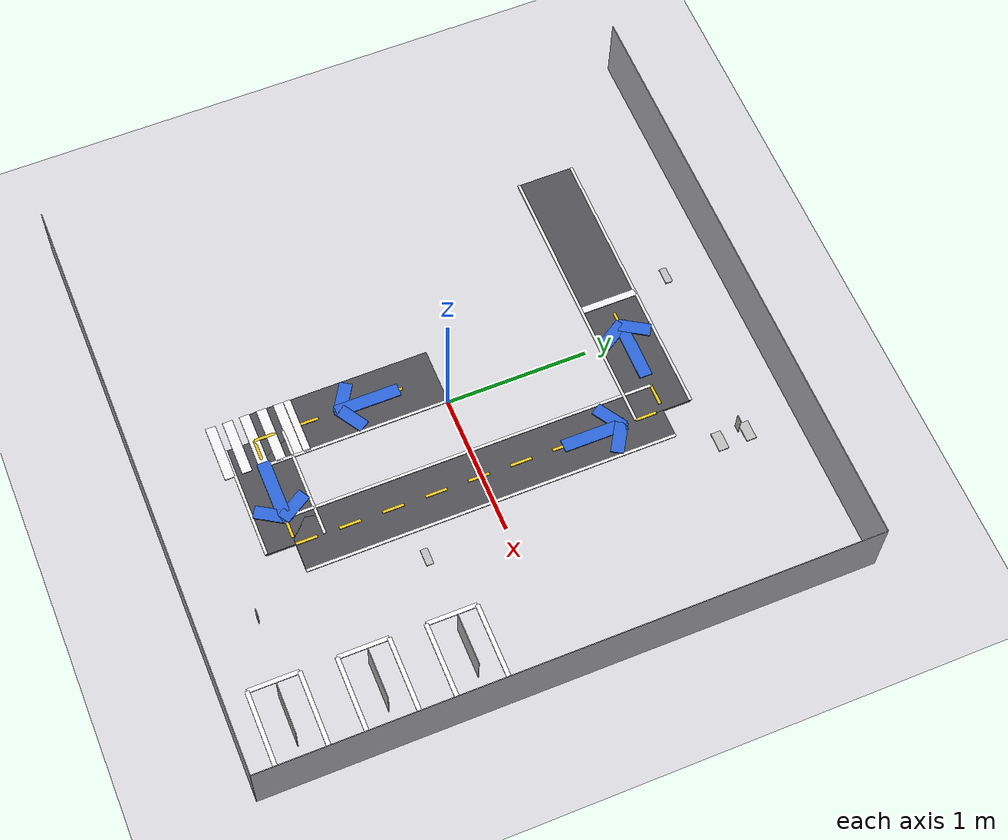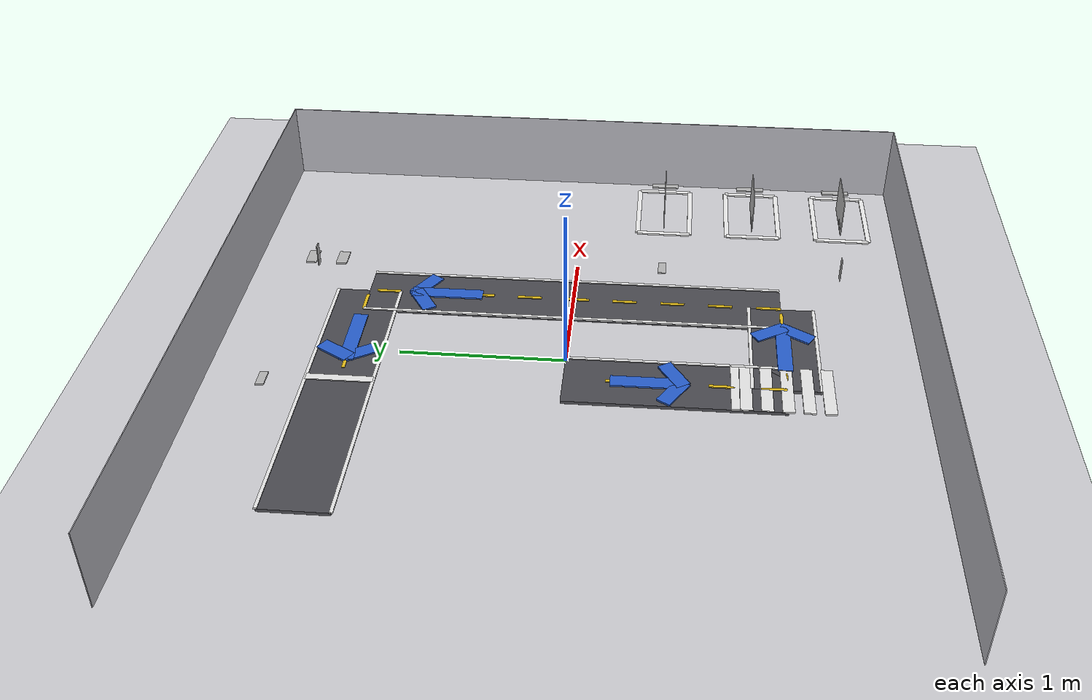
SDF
<sdf version="1.8">
 <world name="smart_community">
  <model name="ground_plane">
   <static>true</static>
   <link name="link">
    <collision name="collision">
     <geometry><plane><normal>0 0 1</normal><size>6 6</size></plane></geometry>
     <surface><friction><ode><mu>1.0</mu><mu2>1.0</mu2></ode></friction></surface>
    </collision>
    <visual name="visual">
     <geometry><plane><normal>0 0 1</normal><size>6 6</size></plane></geometry>
     <material>
      <ambient>0.72 0.72 0.74 1</ambient>
      <diffuse>0.82 0.82 0.84 1</diffuse>
      <specular>0.05 0.05 0.05 1</specular>
     </material>
    </visual>
   </link>
  </model>
  <model name="wall_n">
   <static>true</static>
   <pose>0 2.1025 0.25 0 0 0.0</pose>
   <link name="link">
    <collision name="c"><geometry><box><size>4.205 0.005 0.5</size></box></geometry></collision>
    <visual name="v">
     <geometry><box><size>4.205 0.005 0.5</size></box></geometry>
     <material><ambient>0.55 0.55 0.58 1</ambient><diffuse>0.72 0.72 0.75 1</diffuse></material>
    </visual>
   </link>
  </model>
  <model name="wall_s">
   <static>true</static>
   <pose>0 -2.1025 0.25 0 0 0.0</pose>
   <link name="link">
    <collision name="c"><geometry><box><size>4.205 0.005 0.5</size></box></geometry></collision>
    <visual name="v">
     <geometry><box><size>4.205 0.005 0.5</size></box></geometry>
     <material><ambient>0.55 0.55 0.58 1</ambient><diffuse>0.72 0.72 0.75 1</diffuse></material>
    </visual>
   </link>
  </model>
  <model name="wall_e">
   <static>true</static>
   <pose>2.1025 0 0.25 0 0 0.0</pose>
   <link name="link">
    <collision name="c"><geometry><box><size>0.005 4.205 0.5</size></box></geometry></collision>
    <visual name="v">
     <geometry><box><size>0.005 4.205 0.5</size></box></geometry>
     <material><ambient>0.55 0.55 0.58 1</ambient><diffuse>0.72 0.72 0.75 1</diffuse></material>
    </visual>
   </link>
  </model>
  <model name="road_top">
   <static>true</static>
   <pose>-0.39999999999999997 1.3 0.01 0 0 0.0</pose>
   <link name="link">
    <visual name="v">
     <geometry><box><size>2.0 0.4 0.02</size></box></geometry>
     <material><ambient>0.3 0.3 0.32 1</ambient><diffuse>0.3 0.3 0.32 1</diffuse></material>
    </visual>
   </link>
  </model>
  <model name="road_top_edge_n">
   <static>true</static>
   <pose>-0.39999999999999997 1.5 0.021 0 0 0.0</pose>
   <link name="link">
    <visual name="visual">
     <geometry><box><size>2.0 0.02 0.01</size></box></geometry>
     <material>
      <ambient>0.8280000000000001 0.8280000000000001 0.8280000000000001 1</ambient>
      <diffuse>0.92 0.92 0.92 1</diffuse>
     </material>
    </visual>
   </link>
  </model>
  <model name="road_top_edge_s">
   <static>true</static>
   <pose>-0.39999999999999997 1.1 0.021 0 0 0.0</pose>
   <link name="link">
    <visual name="visual">
     <geometry><box><size>2.0 0.02 0.01</size></box></geometry>
     <material>
      <ambient>0.8280000000000001 0.8280000000000001 0.8280000000000001 1</ambient>
      <diffuse>0.92 0.92 0.92 1</diffuse>
     </material>
    </visual>
   </link>
  </model>
  <model name="road_top_dash_4">
   <static>true</static>
   <pose>-0.12499999999999985 1.3 0.021 0 0 0.0</pose>
   <link name="link">
    <visual name="visual">
     <geometry><box><size>0.15 0.02 0.01</size></box></geometry>
     <material><ambient>0.81 0.675 0.09000000000000001 1</ambient><diffuse>0.9 0.75 0.1 1</diffuse></material>
    </visual>
   </link>
  </model>
  <model name="road_top_dash_5">
   <static>true</static>
   <pose>0.17500000000000016 1.3 0.021 0 0 0.0</pose>
   <link name="link">
    <visual name="visual">
     <geometry><box><size>0.15 0.02 0.01</size></box></geometry>
     <material><ambient>0.81 0.675 0.09000000000000001 1</ambient><diffuse>0.9 0.75 0.1 1</diffuse></material>
    </visual>
   </link>
  </model>
  <model name="road_top_dash_6">
   <static>true</static>
   <pose>0.47500000000000014 1.3 0.021 0 0 0.0</pose>
   <link name="link">
    <visual name="visual">
     <geometry><box><size>0.15 0.02 0.01</size></box></geometry>
     <material><ambient>0.81 0.675 0.09000000000000001 1</ambient><diffuse>0.9 0.75 0.1 1</diffuse></material>
    </visual>
   </link>
  </model>
  <model name="road_central">
   <static>true</static>
   <pose>-0.2 -0.65 0.01 0 0 0.0</pose>
   <link name="link">
    <visual name="v">
     <geometry><box><size>0.4 1.3 0.02</size></box></geometry>
     <material><ambient>0.3 0.3 0.32 1</ambient><diffuse>0.3 0.3 0.32 1</diffuse></material>
    </visual>
   </link>
  </model>
  <model name="road_central_edge_e">
   <static>true</static>
   <pose>0.0 -0.65 0.021 0 0 0.0</pose>
   <link name="link">
    <visual name="visual">
     <geometry><box><size>0.02 1.3 0.01</size></box></geometry>
     <material>
      <ambient>0.8280000000000001 0.8280000000000001 0.8280000000000001 1</ambient>
      <diffuse>0.92 0.92 0.92 1</diffuse>
     </material>
    </visual>
   </link>
  </model>
  <model name="road_central_dash_0">
   <static>true</static>
   <pose>-0.2 -1.225 0.021 0 0 0.0</pose>
   <link name="link">
    <visual name="visual">
     <geometry><box><size>0.02 0.15 0.01</size></box></geometry>
     <material><ambient>0.81 0.675 0.09000000000000001 1</ambient><diffuse>0.9 0.75 0.1 1</diffuse></material>
    </visual>
   </link>
  </model>
  <model name="road_central_dash_1">
   <static>true</static>
   <pose>-0.2 -0.925 0.021 0 0 0.0</pose>
   <link name="link">
    <visual name="visual">
     <geometry><box><size>0.02 0.15 0.01</size></box></geometry>
     <material><ambient>0.81 0.675 0.09000000000000001 1</ambient><diffuse>0.9 0.75 0.1 1</diffuse></material>
    </visual>
   </link>
  </model>
  <model name="road_central_dash_2">
   <static>true</static>
   <pose>-0.2 -0.625 0.021 0 0 0.0</pose>
   <link name="link">
    <visual name="visual">
     <geometry><box><size>0.02 0.15 0.01</size></box></geometry>
     <material><ambient>0.81 0.675 0.09000000000000001 1</ambient><diffuse>0.9 0.75 0.1 1</diffuse></material>
    </visual>
   </link>
  </model>
  <model name="road_central_dash_3">
   <static>true</static>
   <pose>-0.2 -0.32499999999999996 0.021 0 0 0.0</pose>
   <link name="link">
    <visual name="visual">
     <geometry><box><size>0.02 0.15 0.01</size></box></geometry>
     <material><ambient>0.81 0.675 0.09000000000000001 1</ambient><diffuse>0.9 0.75 0.1 1</diffuse></material>
    </visual>
   </link>
  </model>
  <model name="road_bottom">
   <static>true</static>
   <pose>0.19999999999999998 -1.3 0.01 0 0 0.0</pose>
   <link name="link">
    <visual name="v">
     <geometry><box><size>0.8 0.4 0.02</size></box></geometry>
     <material><ambient>0.3 0.3 0.32 1</ambient><diffuse>0.3 0.3 0.32 1</diffuse></material>
    </visual>
   </link>
  </model>
  <model name="road_bottom_edge_n">
   <static>true</static>
   <pose>0.19999999999999998 -1.1 0.021 0 0 0.0</pose>
   <link name="link">
    <visual name="visual">
     <geometry><box><size>0.8 0.02 0.01</size></box></geometry>
     <material>
      <ambient>0.8280000000000001 0.8280000000000001 0.8280000000000001 1</ambient>
      <diffuse>0.92 0.92 0.92 1</diffuse>
     </material>
    </visual>
   </link>
  </model>
  <model name="road_bottom_edge_s">
   <static>true</static>
   <pose>0.19999999999999998 -1.5 0.021 0 0 0.0</pose>
   <link name="link">
    <visual name="visual">
     <geometry><box><size>0.8 0.02 0.01</size></box></geometry>
     <material>
      <ambient>0.8280000000000001 0.8280000000000001 0.8280000000000001 1</ambient>
      <diffuse>0.92 0.92 0.92 1</diffuse>
     </material>
    </visual>
   </link>
  </model>
  <model name="road_bottom_dash_0">
   <static>true</static>
   <pose>-0.125 -1.3 0.021 0 0 0.0</pose>
   <link name="link">
    <visual name="visual">
     <geometry><box><size>0.15 0.02 0.01</size></box></geometry>
     <material><ambient>0.81 0.675 0.09000000000000001 1</ambient><diffuse>0.9 0.75 0.1 1</diffuse></material>
    </visual>
   </link>
  </model>
  <model name="road_bottom_dash_1">
   <static>true</static>
   <pose>0.175 -1.3 0.021 0 0 0.0</pose>
   <link name="link">
    <visual name="visual">
     <geometry><box><size>0.15 0.02 0.01</size></box></geometry>
     <material><ambient>0.81 0.675 0.09000000000000001 1</ambient><diffuse>0.9 0.75 0.1 1</diffuse></material>
    </visual>
   </link>
  </model>
  <model name="road_bottom_dash_2">
   <static>true</static>
   <pose>0.475 -1.3 0.021 0 0 0.0</pose>
   <link name="link">
    <visual name="visual">
     <geometry><box><size>0.15 0.02 0.01</size></box></geometry>
     <material><ambient>0.81 0.675 0.09000000000000001 1</ambient><diffuse>0.9 0.75 0.1 1</diffuse></material>
    </visual>
   </link>
  </model>
  <model name="road_right">
   <static>true</static>
   <pose>0.6 0.0 0.01 0 0 0.0</pose>
   <link name="link">
    <visual name="v">
     <geometry><box><size>0.4 2.6 0.02</size></box></geometry>
     <material><ambient>0.3 0.3 0.32 1</ambient><diffuse>0.3 0.3 0.32 1</diffuse></material>
    </visual>
   </link>
  </model>
  <model name="road_right_edge_e">
   <static>true</static>
   <pose>0.8 0.0 0.021 0 0 0.0</pose>
   <link name="link">
    <visual name="visual">
     <geometry><box><size>0.02 2.6 0.01</size></box></geometry>
     <material>
      <ambient>0.8280000000000001 0.8280000000000001 0.8280000000000001 1</ambient>
      <diffuse>0.92 0.92 0.92 1</diffuse>
     </material>
    </visual>
   </link>
  </model>
  <model name="road_right_edge_w">
   <static>true</static>
   <pose>0.39999999999999997 0.0 0.021 0 0 0.0</pose>
   <link name="link">
    <visual name="visual">
     <geometry><box><size>0.02 2.6 0.01</size></box></geometry>
     <material>
      <ambient>0.8280000000000001 0.8280000000000001 0.8280000000000001 1</ambient>
      <diffuse>0.92 0.92 0.92 1</diffuse>
     </material>
    </visual>
   </link>
  </model>
  <model name="road_right_dash_0">
   <static>true</static>
   <pose>0.6 -1.225 0.021 0 0 0.0</pose>
   <link name="link">
    <visual name="visual">
     <geometry><box><size>0.02 0.15 0.01</size></box></geometry>
     <material><ambient>0.81 0.675 0.09000000000000001 1</ambient><diffuse>0.9 0.75 0.1 1</diffuse></material>
    </visual>
   </link>
  </model>
  <model name="road_right_dash_1">
   <static>true</static>
   <pose>0.6 -0.925 0.021 0 0 0.0</pose>
   <link name="link">
    <visual name="visual">
     <geometry><box><size>0.02 0.15 0.01</size></box></geometry>
     <material><ambient>0.81 0.675 0.09000000000000001 1</ambient><diffuse>0.9 0.75 0.1 1</diffuse></material>
    </visual>
   </link>
  </model>
  <model name="road_right_dash_2">
   <static>true</static>
   <pose>0.6 -0.625 0.021 0 0 0.0</pose>
   <link name="link">
    <visual name="visual">
     <geometry><box><size>0.02 0.15 0.01</size></box></geometry>
     <material><ambient>0.81 0.675 0.09000000000000001 1</ambient><diffuse>0.9 0.75 0.1 1</diffuse></material>
    </visual>
   </link>
  </model>
  <model name="road_right_dash_3">
   <static>true</static>
   <pose>0.6 -0.32499999999999996 0.021 0 0 0.0</pose>
   <link name="link">
    <visual name="visual">
     <geometry><box><size>0.02 0.15 0.01</size></box></geometry>
     <material><ambient>0.81 0.675 0.09000000000000001 1</ambient><diffuse>0.9 0.75 0.1 1</diffuse></material>
    </visual>
   </link>
  </model>
  <model name="road_right_dash_4">
   <static>true</static>
   <pose>0.6 -0.02499999999999998 0.021 0 0 0.0</pose>
   <link name="link">
    <visual name="visual">
     <geometry><box><size>0.02 0.15 0.01</size></box></geometry>
     <material><ambient>0.81 0.675 0.09000000000000001 1</ambient><diffuse>0.9 0.75 0.1 1</diffuse></material>
    </visual>
   </link>
  </model>
  <model name="road_right_dash_5">
   <static>true</static>
   <pose>0.6 0.275 0.021 0 0 0.0</pose>
   <link name="link">
    <visual name="visual">
     <geometry><box><size>0.02 0.15 0.01</size></box></geometry>
     <material><ambient>0.81 0.675 0.09000000000000001 1</ambient><diffuse>0.9 0.75 0.1 1</diffuse></material>
    </visual>
   </link>
  </model>
  <model name="road_right_dash_6">
   <static>true</static>
   <pose>0.6 0.575 0.021 0 0 0.0</pose>
   <link name="link">
    <visual name="visual">
     <geometry><box><size>0.02 0.15 0.01</size></box></geometry>
     <material><ambient>0.81 0.675 0.09000000000000001 1</ambient><diffuse>0.9 0.75 0.1 1</diffuse></material>
    </visual>
   </link>
  </model>
  <model name="road_right_dash_7">
   <static>true</static>
   <pose>0.6 0.875 0.021 0 0 0.0</pose>
   <link name="link">
    <visual name="visual">
     <geometry><box><size>0.02 0.15 0.01</size></box></geometry>
     <material><ambient>0.81 0.675 0.09000000000000001 1</ambient><diffuse>0.9 0.75 0.1 1</diffuse></material>
    </visual>
   </link>
  </model>
  <model name="road_right_dash_8">
   <static>true</static>
   <pose>0.6 1.175 0.021 0 0 0.0</pose>
   <link name="link">
    <visual name="visual">
     <geometry><box><size>0.02 0.15 0.01</size></box></geometry>
     <material><ambient>0.81 0.675 0.09000000000000001 1</ambient><diffuse>0.9 0.75 0.1 1</diffuse></material>
    </visual>
   </link>
  </model>
  <model name="arrow_top">
   <static>true</static>
   <pose>0.09999999999999998 1.3 0.024 0 0 3.141592653589793</pose>
   <link name="link">
    <visual name="shaft">
     <geometry><box><size>0.45 0.09 0.012</size></box></geometry>
     <material><ambient>0.136 0.323 0.697 1</ambient><diffuse>0.16 0.38 0.82 1</diffuse></material>
    </visual>
    <visual name="head1">
     <pose>0.1454625 -0.0795375 0 0 0 45</pose>
     <geometry><box><size>0.225 0.09 0.012</size></box></geometry>
     <material><ambient>0.136 0.323 0.697 1</ambient><diffuse>0.16 0.38 0.82 1</diffuse></material>
    </visual>
    <visual name="head2">
     <pose>0.1454625 0.0795375 0 0 0 -45</pose>
     <geometry><box><size>0.225 0.09 0.012</size></box></geometry>
     <material><ambient>0.136 0.323 0.697 1</ambient><diffuse>0.16 0.38 0.82 1</diffuse></material>
    </visual>
   </link>
  </model>
  <model name="arrow_central">
   <static>true</static>
   <pose>-0.2 -0.5 0.024 0 0 -1.5707963267948966</pose>
   <link name="link">
    <visual name="shaft">
     <geometry><box><size>0.45 0.09 0.012</size></box></geometry>
     <material><ambient>0.136 0.323 0.697 1</ambient><diffuse>0.16 0.38 0.82 1</diffuse></material>
    </visual>
    <visual name="head1">
     <pose>0.1454625 -0.0795375 0 0 0 45</pose>
     <geometry><box><size>0.225 0.09 0.012</size></box></geometry>
     <material><ambient>0.136 0.323 0.697 1</ambient><diffuse>0.16 0.38 0.82 1</diffuse></material>
    </visual>
    <visual name="head2">
     <pose>0.1454625 0.0795375 0 0 0 -45</pose>
     <geometry><box><size>0.225 0.09 0.012</size></box></geometry>
     <material><ambient>0.136 0.323 0.697 1</ambient><diffuse>0.16 0.38 0.82 1</diffuse></material>
    </visual>
   </link>
  </model>
  <model name="arrow_bottom">
   <static>true</static>
   <pose>0.19999999999999996 -1.3 0.024 0 0 0.0</pose>
   <link name="link">
    <visual name="shaft">
     <geometry><box><size>0.45 0.09 0.012</size></box></geometry>
     <material><ambient>0.136 0.323 0.697 1</ambient><diffuse>0.16 0.38 0.82 1</diffuse></material>
    </visual>
    <visual name="head1">
     <pose>0.1454625 -0.0795375 0 0 0 45</pose>
     <geometry><box><size>0.225 0.09 0.012</size></box></geometry>
     <material><ambient>0.136 0.323 0.697 1</ambient><diffuse>0.16 0.38 0.82 1</diffuse></material>
    </visual>
    <visual name="head2">
     <pose>0.1454625 0.0795375 0 0 0 -45</pose>
     <geometry><box><size>0.225 0.09 0.012</size></box></geometry>
     <material><ambient>0.136 0.323 0.697 1</ambient><diffuse>0.16 0.38 0.82 1</diffuse></material>
    </visual>
   </link>
  </model>
  <model name="arrow_right">
   <static>true</static>
   <pose>0.6 0.8 0.024 0 0 1.5707963267948966</pose>
   <link name="link">
    <visual name="shaft">
     <geometry><box><size>0.45 0.09 0.012</size></box></geometry>
     <material><ambient>0.136 0.323 0.697 1</ambient><diffuse>0.16 0.38 0.82 1</diffuse></material>
    </visual>
    <visual name="head1">
     <pose>0.1454625 -0.0795375 0 0 0 45</pose>
     <geometry><box><size>0.225 0.09 0.012</size></box></geometry>
     <material><ambient>0.136 0.323 0.697 1</ambient><diffuse>0.16 0.38 0.82 1</diffuse></material>
    </visual>
    <visual name="head2">
     <pose>0.1454625 0.0795375 0 0 0 -45</pose>
     <geometry><box><size>0.225 0.09 0.012</size></box></geometry>
     <material><ambient>0.136 0.323 0.697 1</ambient><diffuse>0.16 0.38 0.82 1</diffuse></material>
    </visual>
   </link>
  </model>
  <model name="stop_top">
   <static>true</static>
   <pose>-0.3 1.3 0.021 0 0 0.0</pose>
   <link name="link">
    <visual name="visual">
     <geometry><box><size>0.05 0.3999999999999999 0.01</size></box></geometry>
     <material>
      <ambient>0.8280000000000001 0.8280000000000001 0.8280000000000001 1</ambient>
      <diffuse>0.92 0.92 0.92 1</diffuse>
     </material>
    </visual>
   </link>
  </model>
  <model name="stop_bottom">
   <static>true</static>
   <pose>-0.2 -1.0 0.021 0 0 0.0</pose>
   <link name="link">
    <visual name="visual">
     <geometry><box><size>0.4 0.05 0.01</size></box></geometry>
     <material>
      <ambient>0.8280000000000001 0.8280000000000001 0.8280000000000001 1</ambient>
      <diffuse>0.92 0.92 0.92 1</diffuse>
     </material>
    </visual>
   </link>
  </model>
  <model name="zebra_bottom_0">
   <static>true</static>
   <pose>-0.2 -1.538 0.021 0 0 0.0</pose>
   <link name="link">
    <visual name="visual">
     <geometry><box><size>0.4 0.07 0.01</size></box></geometry>
     <material>
      <ambient>0.8280000000000001 0.8280000000000001 0.8280000000000001 1</ambient>
      <diffuse>0.92 0.92 0.92 1</diffuse>
     </material>
    </visual>
   </link>
  </model>
  <model name="zebra_bottom_1">
   <static>true</static>
   <pose>-0.2 -1.419 0.021 0 0 0.0</pose>
   <link name="link">
    <visual name="visual">
     <geometry><box><size>0.4 0.07 0.01</size></box></geometry>
     <material>
      <ambient>0.8280000000000001 0.8280000000000001 0.8280000000000001 1</ambient>
      <diffuse>0.92 0.92 0.92 1</diffuse>
     </material>
    </visual>
   </link>
  </model>
  <model name="zebra_bottom_2">
   <static>true</static>
   <pose>-0.2 -1.3 0.021 0 0 0.0</pose>
   <link name="link">
    <visual name="visual">
     <geometry><box><size>0.4 0.07 0.01</size></box></geometry>
     <material>
      <ambient>0.8280000000000001 0.8280000000000001 0.8280000000000001 1</ambient>
      <diffuse>0.92 0.92 0.92 1</diffuse>
     </material>
    </visual>
   </link>
  </model>
  <model name="zebra_bottom_3">
   <static>true</static>
   <pose>-0.2 -1.181 0.021 0 0 0.0</pose>
   <link name="link">
    <visual name="visual">
     <geometry><box><size>0.4 0.07 0.01</size></box></geometry>
     <material>
      <ambient>0.8280000000000001 0.8280000000000001 0.8280000000000001 1</ambient>
      <diffuse>0.92 0.92 0.92 1</diffuse>
     </material>
    </visual>
   </link>
  </model>
  <model name="zebra_bottom_4">
   <static>true</static>
   <pose>-0.2 -1.062 0.021 0 0 0.0</pose>
   <link name="link">
    <visual name="visual">
     <geometry><box><size>0.4 0.07 0.01</size></box></geometry>
     <material>
      <ambient>0.8280000000000001 0.8280000000000001 0.8280000000000001 1</ambient>
      <diffuse>0.92 0.92 0.92 1</diffuse>
     </material>
    </visual>
   </link>
  </model>
  <model name="person_f1">
   <static>true</static>
   <pose>0.9 1.7 0.075 0 0 3.141592653589793</pose>
   <link name="link">
    <collision name="collision"><geometry><box><size>0.05 0.005 0.15</size></box></geometry></collision>
    <visual name="visual">
     <geometry><box><size>0.05 0.005 0.15</size></box></geometry>
     <material>
      <pbr>
       <metal>
        <albedo_map>model://smart_community_sim/textures/person_noncommunity_01.png</albedo_map>
        <metalness>0.0</metalness>
        <roughness>1.0</roughness>
       </metal>
      </pbr>
     </material>
    </visual>
   </link>
  </model>
  <model name="person_f2">
   <static>true</static>
   <pose>1.0 -1.7 0.075 0 0 0.0</pose>
   <link name="link">
    <collision name="collision"><geometry><box><size>0.05 0.005 0.15</size></box></geometry></collision>
    <visual name="visual">
     <geometry><box><size>0.05 0.005 0.15</size></box></geometry>
     <material>
      <pbr>
       <metal>
        <albedo_map>model://smart_community_sim/textures/person_noncommunity_02.png</albedo_map>
        <metalness>0.0</metalness>
        <roughness>1.0</roughness>
       </metal>
      </pbr>
     </material>
    </visual>
   </link>
  </model>
  <model name="spot_3_top">
   <static>true</static>
   <pose>1.7 -0.37500000000000006 0.021 0 0 0.0</pose>
   <link name="link">
    <visual name="visual">
     <geometry><box><size>0.55 0.03 0.01</size></box></geometry>
     <material><ambient>0.855 0.855 0.855 1</ambient><diffuse>0.95 0.95 0.95 1</diffuse></material>
    </visual>
   </link>
  </model>
  <model name="spot_3_bot">
   <static>true</static>
   <pose>1.7 -0.7250000000000001 0.021 0 0 0.0</pose>
   <link name="link">
    <visual name="visual">
     <geometry><box><size>0.55 0.03 0.01</size></box></geometry>
     <material><ambient>0.855 0.855 0.855 1</ambient><diffuse>0.95 0.95 0.95 1</diffuse></material>
    </visual>
   </link>
  </model>
  <model name="spot_3_left">
   <static>true</static>
   <pose>1.4249999999999998 -0.55 0.021 0 0 0.0</pose>
   <link name="link">
    <visual name="visual">
     <geometry><box><size>0.03 0.35 0.01</size></box></geometry>
     <material><ambient>0.855 0.855 0.855 1</ambient><diffuse>0.95 0.95 0.95 1</diffuse></material>
    </visual>
   </link>
  </model>
  <model name="spot_3_right">
   <static>true</static>
   <pose>1.975 -0.55 0.021 0 0 0.0</pose>
   <link name="link">
    <visual name="visual">
     <geometry><box><size>0.03 0.35 0.01</size></box></geometry>
     <material><ambient>0.855 0.855 0.855 1</ambient><diffuse>0.95 0.95 0.95 1</diffuse></material>
    </visual>
   </link>
  </model>
  <model name="car_3">
   <static>true</static>
   <pose>1.7 -0.55 0.125 0 0 0.0</pose>
   <link name="link">
    <collision name="collision"><geometry><box><size>0.345 0.005 0.25</size></box></geometry></collision>
    <visual name="visual">
     <geometry><box><size>0.345 0.005 0.25</size></box></geometry>
     <material>
      <pbr>
       <metal>
        <albedo_map>model://smart_community_sim/textures/car_background.png</albedo_map>
        <metalness>0.0</metalness>
        <roughness>1.0</roughness>
       </metal>
      </pbr>
     </material>
    </visual>
    <visual name="plate">
     <pose>-0.08 0.0035 -0.09 0 0 0</pose>
     <geometry><box><size>0.095 0.002 0.03</size></box></geometry>
     <material>
      <pbr>
       <metal>
        <albedo_map>model://smart_community_sim/textures/plate_3.png</albedo_map>
        <metalness>0.0</metalness>
        <roughness>1.0</roughness>
       </metal>
      </pbr>
     </material>
    </visual>
   </link>
  </model>
  <model name="label_spot_3">
   <static>true</static>
   <pose>2.05 -0.55 0.023 0 0 1.5707963267948966</pose>
   <link name="link">
    <visual name="visual">
     <geometry><box><size>0.18276923076923077 0.045 0.01</size></box></geometry>
     <material>
      <pbr>
       <metal>
        <albedo_map>model://smart_community_sim/textures/label_spot_3.png</albedo_map>
        <metalness>0.0</metalness>
        <roughness>1.0</roughness>
       </metal>
      </pbr>
     </material>
    </visual>
   </link>
  </model>
  <model name="spot_2_top">
   <static>true</static>
   <pose>1.7 -0.9749999999999999 0.021 0 0 0.0</pose>
   <link name="link">
    <visual name="visual">
     <geometry><box><size>0.55 0.03 0.01</size></box></geometry>
     <material><ambient>0.855 0.855 0.855 1</ambient><diffuse>0.95 0.95 0.95 1</diffuse></material>
    </visual>
   </link>
  </model>
  <model name="spot_2_bot">
   <static>true</static>
   <pose>1.7 -1.325 0.021 0 0 0.0</pose>
   <link name="link">
    <visual name="visual">
     <geometry><box><size>0.55 0.03 0.01</size></box></geometry>
     <material><ambient>0.855 0.855 0.855 1</ambient><diffuse>0.95 0.95 0.95 1</diffuse></material>
    </visual>
   </link>
  </model>
  <model name="spot_2_left">
   <static>true</static>
   <pose>1.4249999999999998 -1.15 0.021 0 0 0.0</pose>
   <link name="link">
    <visual name="visual">
     <geometry><box><size>0.03 0.35 0.01</size></box></geometry>
     <material><ambient>0.855 0.855 0.855 1</ambient><diffuse>0.95 0.95 0.95 1</diffuse></material>
    </visual>
   </link>
  </model>
  <model name="spot_2_right">
   <static>true</static>
   <pose>1.975 -1.15 0.021 0 0 0.0</pose>
   <link name="link">
    <visual name="visual">
     <geometry><box><size>0.03 0.35 0.01</size></box></geometry>
     <material><ambient>0.855 0.855 0.855 1</ambient><diffuse>0.95 0.95 0.95 1</diffuse></material>
    </visual>
   </link>
  </model>
  <model name="car_2">
   <static>true</static>
   <pose>1.7 -1.15 0.125 0 0 0.0</pose>
   <link name="link">
    <collision name="collision"><geometry><box><size>0.345 0.005 0.25</size></box></geometry></collision>
    <visual name="visual">
     <geometry><box><size>0.345 0.005 0.25</size></box></geometry>
     <material>
      <pbr>
       <metal>
        <albedo_map>model://smart_community_sim/textures/car_background.png</albedo_map>
        <metalness>0.0</metalness>
        <roughness>1.0</roughness>
       </metal>
      </pbr>
     </material>
    </visual>
    <visual name="plate">
     <pose>-0.08 0.0035 -0.09 0 0 0</pose>
     <geometry><box><size>0.095 0.002 0.03</size></box></geometry>
     <material>
      <pbr>
       <metal>
        <albedo_map>model://smart_community_sim/textures/plate_2.png</albedo_map>
        <metalness>0.0</metalness>
        <roughness>1.0</roughness>
       </metal>
      </pbr>
     </material>
    </visual>
   </link>
  </model>
  <model name="label_spot_2">
   <static>true</static>
   <pose>2.05 -1.15 0.023 0 0 1.5707963267948966</pose>
   <link name="link">
    <visual name="visual">
     <geometry><box><size>0.18276923076923077 0.045 0.01</size></box></geometry>
     <material>
      <pbr>
       <metal>
        <albedo_map>model://smart_community_sim/textures/label_spot_2.png</albedo_map>
        <metalness>0.0</metalness>
        <roughness>1.0</roughness>
       </metal>
      </pbr>
     </material>
    </visual>
   </link>
  </model>
  <model name="spot_1_top">
   <static>true</static>
   <pose>1.7 -1.575 0.021 0 0 0.0</pose>
   <link name="link">
    <visual name="visual">
     <geometry><box><size>0.55 0.03 0.01</size></box></geometry>
     <material><ambient>0.855 0.855 0.855 1</ambient><diffuse>0.95 0.95 0.95 1</diffuse></material>
    </visual>
   </link>
  </model>
  <model name="spot_1_bot">
   <static>true</static>
   <pose>1.7 -1.925 0.021 0 0 0.0</pose>
   <link name="link">
    <visual name="visual">
     <geometry><box><size>0.55 0.03 0.01</size></box></geometry>
     <material><ambient>0.855 0.855 0.855 1</ambient><diffuse>0.95 0.95 0.95 1</diffuse></material>
    </visual>
   </link>
  </model>
  <model name="spot_1_left">
   <static>true</static>
   <pose>1.4249999999999998 -1.75 0.021 0 0 0.0</pose>
   <link name="link">
    <visual name="visual">
     <geometry><box><size>0.03 0.35 0.01</size></box></geometry>
     <material><ambient>0.855 0.855 0.855 1</ambient><diffuse>0.95 0.95 0.95 1</diffuse></material>
    </visual>
   </link>
  </model>
  <model name="spot_1_right">
   <static>true</static>
   <pose>1.975 -1.75 0.021 0 0 0.0</pose>
   <link name="link">
    <visual name="visual">
     <geometry><box><size>0.03 0.35 0.01</size></box></geometry>
     <material><ambient>0.855 0.855 0.855 1</ambient><diffuse>0.95 0.95 0.95 1</diffuse></material>
    </visual>
   </link>
  </model>
  <model name="car_1">
   <static>true</static>
   <pose>1.7 -1.75 0.125 0 0 0.0</pose>
   <link name="link">
    <collision name="collision"><geometry><box><size>0.345 0.005 0.25</size></box></geometry></collision>
    <visual name="visual">
     <geometry><box><size>0.345 0.005 0.25</size></box></geometry>
     <material>
      <pbr>
       <metal>
        <albedo_map>model://smart_community_sim/textures/car_background.png</albedo_map>
        <metalness>0.0</metalness>
        <roughness>1.0</roughness>
       </metal>
      </pbr>
     </material>
    </visual>
    <visual name="plate">
     <pose>-0.08 0.0035 -0.09 0 0 0</pose>
     <geometry><box><size>0.095 0.002 0.03</size></box></geometry>
     <material>
      <pbr>
       <metal>
        <albedo_map>model://smart_community_sim/textures/plate_1.png</albedo_map>
        <metalness>0.0</metalness>
        <roughness>1.0</roughness>
       </metal>
      </pbr>
     </material>
    </visual>
   </link>
  </model>
  <model name="label_spot_1">
   <static>true</static>
   <pose>2.05 -1.75 0.023 0 0 1.5707963267948966</pose>
   <link name="link">
    <visual name="visual">
     <geometry><box><size>0.18276923076923077 0.045 0.01</size></box></geometry>
     <material>
      <pbr>
       <metal>
        <albedo_map>model://smart_community_sim/textures/label_spot_1.png</albedo_map>
        <metalness>0.0</metalness>
        <roughness>1.0</roughness>
       </metal>
      </pbr>
     </material>
    </visual>
   </link>
  </model>
  <model name="label_start">
   <static>true</static>
   <pose>0.95 1.75 0.023 0 0 0.0</pose>
   <link name="link">
    <visual name="visual">
     <geometry><box><size>0.13562500000000002 0.07 0.01</size></box></geometry>
     <material>
      <pbr>
       <metal>
        <albedo_map>model://smart_community_sim/textures/label_start.png</albedo_map>
        <metalness>0.0</metalness>
        <roughness>1.0</roughness>
       </metal>
      </pbr>
     </material>
    </visual>
   </link>
  </model>
  <model name="label_end">
   <static>true</static>
   <pose>0.95 1.55 0.023 0 0 0.0</pose>
   <link name="link">
    <visual name="visual">
     <geometry><box><size>0.13562500000000002 0.07 0.01</size></box></geometry>
     <material>
      <pbr>
       <metal>
        <albedo_map>model://smart_community_sim/textures/label_end.png</albedo_map>
        <metalness>0.0</metalness>
        <roughness>1.0</roughness>
       </metal>
      </pbr>
     </material>
    </visual>
   </link>
  </model>
  <model name="label_60cm_a">
   <static>true</static>
   <pose>-0.33999999999999997 1.75 0.023 0 0 0.0</pose>
   <link name="link">
    <visual name="visual">
     <geometry><box><size>0.1169811320754717 0.05 0.01</size></box></geometry>
     <material>
      <pbr>
       <metal>
        <albedo_map>model://smart_community_sim/textures/label_60cm.png</albedo_map>
        <metalness>0.0</metalness>
        <roughness>1.0</roughness>
       </metal>
      </pbr>
     </material>
    </visual>
   </link>
  </model>
  <model name="label_60cm_parking">
   <static>true</static>
   <pose>1.0 -0.55 0.023 0 0 0.0</pose>
   <link name="link">
    <visual name="visual">
     <geometry><box><size>0.1169811320754717 0.05 0.01</size></box></geometry>
     <material>
      <pbr>
       <metal>
        <albedo_map>model://smart_community_sim/textures/label_60cm.png</albedo_map>
        <metalness>0.0</metalness>
        <roughness>1.0</roughness>
       </metal>
      </pbr>
     </material>
    </visual>
   </link>
  </model>
 </world>
</sdf>
